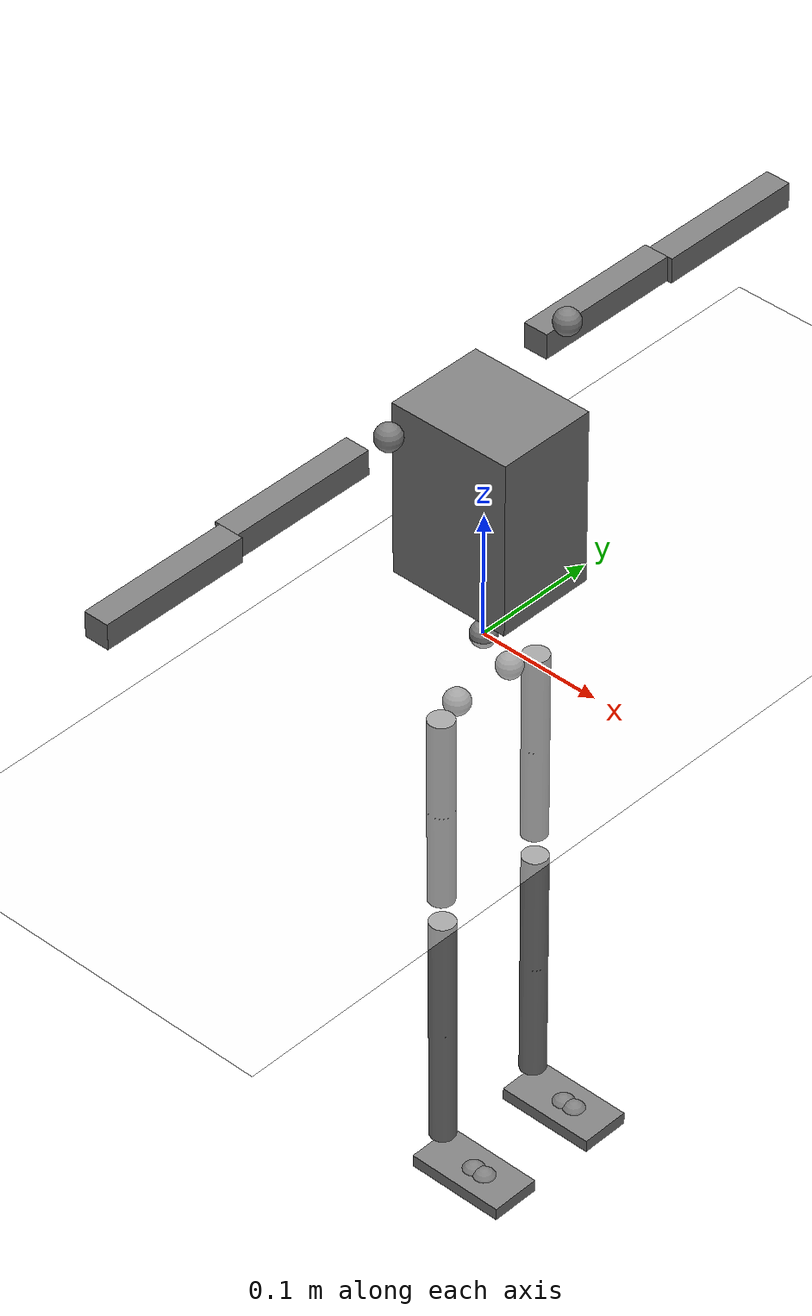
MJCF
<mujoco model="robot">
  <compiler angle="radian" meshdir="meshes/"/>

  <worldbody>
    <body name="base_link">
      <inertial pos="0 0 0" mass="1" diaginertia="0.4 0.4 0.4"/>
      <joint name="floating_base_joint" type="free"/>
      <geom size="0.01" contype="0" conaffinity="0" group="1" density="0"/>
      <geom size="0.01"/>
      <body name="left_hip_pitch_link" pos="0 0.026 -0.043">
        <inertial pos="0 0 0" mass="1" diaginertia="0.4 0.4 0.4"/>
        <joint name="left_hip_pitch_joint" pos="0 0 0" axis="0 1 0" range="-2 2" actuatorfrcrange="-1000 1000"/>
        <geom size="0.01" contype="0" conaffinity="0" group="1" density="0"/>
        <geom size="0.01"/>
        <body name="left_hip_roll_link">
          <inertial pos="0 0 0" mass="1" diaginertia="0.4 0.4 0.4"/>
          <joint name="left_hip_roll_joint" pos="0 0 0" axis="1 0 0" range="-1 1" actuatorfrcrange="-1000 1000"/>
          <geom size="0.01" contype="0" conaffinity="0" group="1" density="0"/>
          <geom size="0.01"/>
          <body name="left_hip_yaw_link">
            <inertial pos="0.005 0.021 -0.08" mass="1" diaginertia="0.4 0.4 0.4"/>
            <joint name="left_hip_yaw_joint" pos="0 0 0" axis="0 0 1" range="-2 2" actuatorfrcrange="-1000 1000"/>
            <geom size="0.01 0.08" pos="0.005 0.021 -0.08" type="cylinder" contype="0" conaffinity="0" group="1" density="0"/>
            <geom size="0.01" pos="0.005 0.021 -0.08"/>
            <body name="left_knee_pitch_link" pos="0.006 0.021 -0.18">
              <inertial pos="0 0 -0.1" mass="1" diaginertia="0.4 0.4 0.4"/>
              <joint name="left_knee_pitch_joint" pos="0 0 0" axis="0 1 0" range="-2 2" actuatorfrcrange="-1000 1000"/>
              <geom size="0.01 0.1" pos="0 0 -0.1" type="cylinder" contype="0" conaffinity="0" group="1" density="0"/>
              <geom size="0.01" pos="0 0 -0.1"/>
              <body name="left_ankle_pitch_link" pos="0.04 0 -0.22">
                <inertial pos="0 0 0" mass="1" diaginertia="0.4 0.4 0.4"/>
                <joint name="left_ankle_pitch_joint" pos="0 0 0" axis="0 1 0" range="-2 2" actuatorfrcrange="-1000 1000"/>
                <geom size="0.01" contype="0" conaffinity="0" group="1" density="0"/>
                <geom size="0.01"/>
                <body name="left_ankle_roll_link">
                  <inertial pos="-0.01 0 0" mass="1" diaginertia="0.4 0.4 0.4"/>
                  <joint name="left_ankle_roll_joint" pos="0 0 0" axis="1 0 0" range="-2 2" actuatorfrcrange="-1000 1000"/>
                  <geom size="0.04 0.02 0.005" pos="-0.01 0 0" type="box" contype="0" conaffinity="0" group="1" density="0"/>
                  <geom size="0.01" pos="-0.01 0 0"/>
                </body>
              </body>
            </body>
          </body>
        </body>
      </body>
      <body name="waist_yaw_link" pos="0.005 0 0.1471">
        <inertial pos="0 0 0" mass="1" diaginertia="0.4 0.4 0.4"/>
        <joint name="waist_yaw_joint" pos="0 0 0" axis="0 0 1" range="-2 2" actuatorfrcrange="-1000 1000"/>
        <geom size="0.01" contype="0" conaffinity="0" group="1" density="0"/>
        <geom size="0.01"/>
        <body name="waist_roll_link">
          <inertial pos="0 0 0" mass="1" diaginertia="0.4 0.4 0.4"/>
          <joint name="waist_roll_joint" pos="0 0 0" axis="1 0 0" range="-2 2" actuatorfrcrange="-1000 1000"/>
          <geom size="0.01" contype="0" conaffinity="0" group="1" density="0"/>
          <geom size="0.01"/>
          <body name="waist_pitch_link">
            <inertial pos="0 0 -0.025" mass="1" diaginertia="0.4 0.4 0.4"/>
            <joint name="waist_pitch_joint" pos="0 0 0" axis="0 1 0" range="-2 2" actuatorfrcrange="-1000 1000"/>
            <geom size="0.05 0.04 0.07" pos="0 0 -0.025" type="box" contype="0" conaffinity="0" group="1" density="0"/>
            <geom size="0.01" pos="0 0 -0.025"/>
            <body name="left_shoulder_pitch_link" pos="-0.01 0.085 0.063">
              <inertial pos="0 0 0" mass="1" diaginertia="0.4 0.4 0.4"/>
              <joint name="left_shoulder_pitch_joint" pos="0 0 0" axis="1 0 0" range="-2 2" actuatorfrcrange="-1000 1000"/>
              <geom size="0.01" contype="0" conaffinity="0" group="1" density="0"/>
              <geom size="0.01"/>
              <body name="left_shoulder_roll_link">
                <inertial pos="0 0 0" mass="1" diaginertia="0.4 0.4 0.4"/>
                <joint name="left_shoulder_roll_joint" pos="0 0 0" axis="0 1 0" range="-2 2" actuatorfrcrange="-1000 1000"/>
                <geom size="0.01" contype="0" conaffinity="0" group="1" density="0"/>
                <geom size="0.01"/>
                <body name="left_shoulder_yaw_link">
                  <inertial pos="-0.0279552 0.06 -0.03" mass="1" diaginertia="0.4 0.4 0.4"/>
                  <joint name="left_shoulder_yaw_joint" pos="0 0 0" axis="0 0 1" range="-2 2" actuatorfrcrange="-1000 1000"/>
                  <geom size="0.01 0.06 0.01" pos="-0.0279552 0.06 -0.03" type="box" contype="0" conaffinity="0" group="1" density="0"/>
                  <geom size="0.01" pos="-0.0279552 0.06 -0.03"/>
                  <body name="left_elbow_pitch_link" pos="-0.024 0.12 -0.03">
                    <inertial pos="0 0.06 0" mass="1" diaginertia="0.4 0.4 0.4"/>
                    <joint name="left_elbow_pitch_joint" pos="0 0 0" axis="0 0 1" range="-2 2" actuatorfrcrange="-1000 1000"/>
                    <geom size="0.01 0.06 0.01" pos="0 0.06 0" type="box" contype="0" conaffinity="0" group="1" density="0"/>
                    <geom size="0.01" pos="0 0.06 0"/>
                  </body>
                </body>
              </body>
            </body>
            <body name="right_shoulder_pitch_link" pos="-0.01 -0.085 0.063">
              <inertial pos="0 0 0" mass="1" diaginertia="0.4 0.4 0.4"/>
              <joint name="right_shoulder_pitch_joint" pos="0 0 0" axis="1 0 0" range="-2 2" actuatorfrcrange="-1000 1000"/>
              <geom size="0.01" contype="0" conaffinity="0" group="1" density="0"/>
              <geom size="0.01"/>
              <body name="right_shoulder_roll_link">
                <inertial pos="0 0 0" mass="1" diaginertia="0.4 0.4 0.4"/>
                <joint name="right_shoulder_roll_joint" pos="0 0 0" axis="0 1 0" range="-2 2" actuatorfrcrange="-1000 1000"/>
                <geom size="0.01" contype="0" conaffinity="0" group="1" density="0"/>
                <geom size="0.01"/>
                <body name="right_shoulder_yaw_link">
                  <inertial pos="-0.0279552 -0.06 -0.03" mass="1" diaginertia="0.4 0.4 0.4"/>
                  <joint name="right_shoulder_yaw_joint" pos="0 0 0" axis="0 0 1" range="-2 2" actuatorfrcrange="-1000 1000"/>
                  <geom size="0.01 0.06 0.01" pos="-0.0279552 -0.06 -0.03" type="box" contype="0" conaffinity="0" group="1" density="0"/>
                  <geom size="0.01" pos="-0.0279552 -0.06 -0.03"/>
                  <body name="right_elbow_pitch_link" pos="-0.024 -0.12 -0.03">
                    <inertial pos="0 -0.06 0" mass="1" diaginertia="0.4 0.4 0.4"/>
                    <joint name="right_elbow_pitch_joint" pos="0 0 0" axis="0 0 1" range="-2 2" actuatorfrcrange="-1000 1000"/>
                    <geom size="0.01 0.06 0.01" pos="0 -0.06 0" type="box" contype="0" conaffinity="0" group="1" density="0"/>
                    <geom size="0.01" pos="0 -0.06 0"/>
                  </body>
                </body>
              </body>
            </body>
          </body>
        </body>
      </body>
      <body name="right_hip_pitch_link" pos="0 -0.026 -0.043">
        <inertial pos="0 0 0" mass="1" diaginertia="0.4 0.4 0.4"/>
        <joint name="right_hip_pitch_joint" pos="0 0 0" axis="0 1 0" range="-2 2" actuatorfrcrange="-1000 1000"/>
        <geom size="0.01" contype="0" conaffinity="0" group="1" density="0"/>
        <geom size="0.01"/>
        <body name="right_hip_roll_link">
          <inertial pos="0 0 0" mass="1" diaginertia="0.4 0.4 0.4"/>
          <joint name="right_hip_roll_joint" pos="0 0 0" axis="1 0 0" range="-1 1" actuatorfrcrange="-1000 1000"/>
          <geom size="0.01" contype="0" conaffinity="0" group="1" density="0"/>
          <geom size="0.01"/>
          <body name="right_hip_yaw_link">
            <inertial pos="0.005 -0.021 -0.08" mass="1" diaginertia="0.4 0.4 0.4"/>
            <joint name="right_hip_yaw_joint" pos="0 0 0" axis="0 0 1" range="-2 2" actuatorfrcrange="-1000 1000"/>
            <geom size="0.01 0.08" pos="0.005 -0.021 -0.08" type="cylinder" contype="0" conaffinity="0" group="1" density="0"/>
            <geom size="0.01" pos="0.005 -0.021 -0.08"/>
            <body name="right_knee_pitch_link" pos="0.006 -0.021 -0.18">
              <inertial pos="0 0 -0.1" mass="1" diaginertia="0.4 0.4 0.4"/>
              <joint name="right_knee_pitch_joint" pos="0 0 0" axis="0 1 0" range="-2 2" actuatorfrcrange="-1000 1000"/>
              <geom size="0.01 0.1" pos="0 0 -0.1" type="cylinder" contype="0" conaffinity="0" group="1" density="0"/>
              <geom size="0.01" pos="0 0 -0.1"/>
              <body name="right_ankle_pitch_link" pos="0.04 0 -0.22">
                <inertial pos="0 0 0" mass="1" diaginertia="0.4 0.4 0.4"/>
                <joint name="right_ankle_pitch_joint" pos="0 0 0" axis="0 1 0" range="-2 2" actuatorfrcrange="-1000 1000"/>
                <geom size="0.01" contype="0" conaffinity="0" group="1" density="0"/>
                <geom size="0.01"/>
                <body name="right_ankle_roll_link">
                  <inertial pos="-0.01 0 0" mass="1" diaginertia="0.4 0.4 0.4"/>
                  <joint name="right_ankle_roll_joint" pos="0 0 0" axis="1 0 0" range="-2 2" actuatorfrcrange="-1000 1000"/>
                  <geom size="0.04 0.02 0.005" pos="-0.01 0 0" type="box" contype="0" conaffinity="0" group="1" density="0"/>
                  <geom size="0.01" pos="-0.01 0 0"/>
                </body>
              </body>
            </body>
          </body>
        </body>
      </body>
    </body>
  </worldbody>
  <!-- setup scene -->
  <statistic center="1.0 0.7 1.0" extent="0.8"/>
  <visual>
    <headlight diffuse="0.6 0.6 0.6" ambient="0.1 0.1 0.1" specular="0.9 0.9 0.9"/>
    <rgba haze="0.15 0.25 0.35 1"/>
    <global azimuth="-140" elevation="-20" offwidth="2080" offheight="1170"/>
  </visual>
  <asset>
     <texture type="skybox" builtin="gradient" rgb1="1 1 1" rgb2="1 1 1" width="800" height="800"/>
    <texture type="2d" name="groundplane" builtin="checker" mark="edge" rgb1="1 1 1" rgb2="1 1 1" markrgb="0 0 0"
      width="300" height="300"/>
    <material name="groundplane" texture="groundplane" texuniform="true" texrepeat="5 5" reflectance="0"/>
    <texture type="skybox" builtin="gradient" rgb1=".4 .5 .6" rgb2="0 0 0" width="100" height="100"/>
    <texture builtin="flat" height="1278" mark="cross" markrgb="1 1 1" name="texgeom" random="0.01" rgb1="0.8 0.6 0.4" rgb2="0.8 0.6 0.4" type="cube" width="127"/>
    <texture name="texplane" builtin="checker" height="512" width="512" rgb1=".2 .3 .4" rgb2=".1 .15 .2" type="2d" />
    <material name="MatPlane" reflectance="0.5" shininess="0.01" specular="0.1" texrepeat="1 1" texture="texplane" texuniform="true" />
    <material name="geom" texture="texgeom" texuniform="true"/>
  </asset>
   <worldbody>
    <geom name="floor" size="0 0 0.01" type="plane" material="groundplane" contype="1" conaffinity="0" priority="1"
      friction="0.6" condim="3"/>

        <light diffuse=".5 .5 .5" pos="-3 -3 5" dir="3 3 -5" castshadow="true"/>

  </worldbody>
</mujoco>
